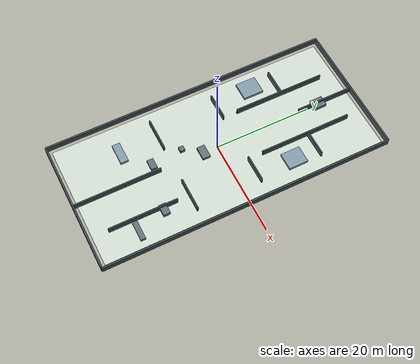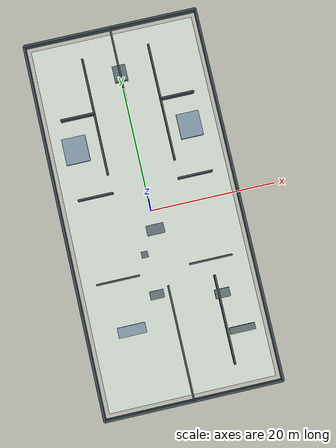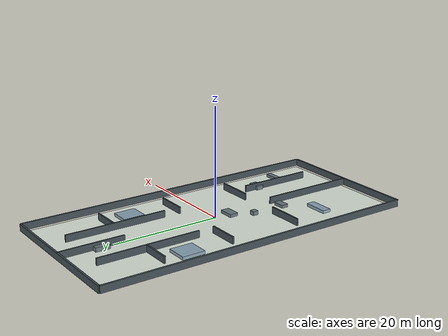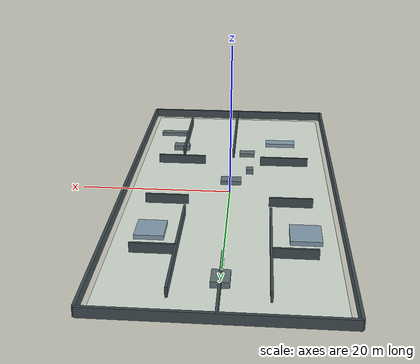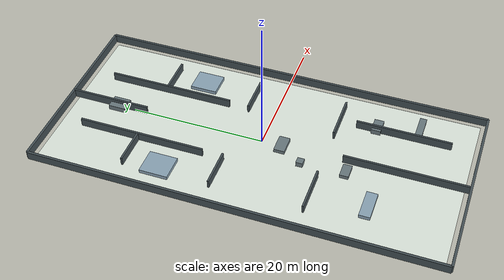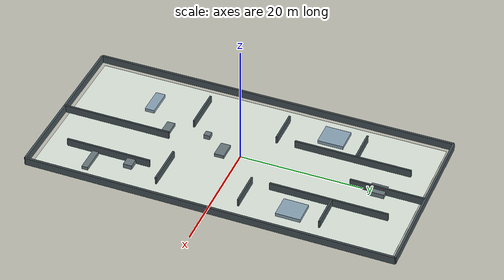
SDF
<?xml version="1.0" ?>
<sdf version="1.6">
  <world name="duplex_family">
    <gravity>0 0 -9.8</gravity>
    <scene>
      <ambient>0.65 0.65 0.65 1</ambient>
      <background>0.78 0.84 0.88 1</background>
    </scene>
    <include>
      <uri>model://sun</uri>
    </include>
    <model name="duplex_family_floor">
      <static>true</static>
      <pose>0.000 0.000 -0.025 0 0 0</pose>
      <link name="floor_link">
        <collision name="floor_collision">
          <geometry>
            <box><size>26.400 58.400 0.050</size></box>
          </geometry>
        </collision>
        <visual name="floor_visual">
          <geometry>
            <box><size>26.400 58.400 0.050</size></box>
          </geometry>
          <material><ambient>0.88 0.92 0.88 1</ambient><diffuse>0.88 0.92 0.88 1</diffuse></material>
        </visual>
      </link>
    </model>
    <model name="outer_north">
      <static>true</static>
      <pose>0.000 30.000 0.625 0 0 0</pose>
      <link name="outer_north_link">
        <collision name="outer_north_collision">
          <geometry>
            <box><size>28.000 0.350 1.250</size></box>
          </geometry>
        </collision>
        <visual name="outer_north_visual">
          <geometry>
            <box><size>28.000 0.350 1.250</size></box>
          </geometry>
          <material><ambient>0.27 0.32 0.34 1</ambient><diffuse>0.27 0.32 0.34 1</diffuse></material>
        </visual>
      </link>
    </model>
    <model name="outer_south">
      <static>true</static>
      <pose>0.000 -30.000 0.625 0 0 0</pose>
      <link name="outer_south_link">
        <collision name="outer_south_collision">
          <geometry>
            <box><size>28.000 0.350 1.250</size></box>
          </geometry>
        </collision>
        <visual name="outer_south_visual">
          <geometry>
            <box><size>28.000 0.350 1.250</size></box>
          </geometry>
          <material><ambient>0.27 0.32 0.34 1</ambient><diffuse>0.27 0.32 0.34 1</diffuse></material>
        </visual>
      </link>
    </model>
    <model name="outer_west">
      <static>true</static>
      <pose>-14.000 0.000 0.625 0 0 0</pose>
      <link name="outer_west_link">
        <collision name="outer_west_collision">
          <geometry>
            <box><size>0.350 60.000 1.250</size></box>
          </geometry>
        </collision>
        <visual name="outer_west_visual">
          <geometry>
            <box><size>0.350 60.000 1.250</size></box>
          </geometry>
          <material><ambient>0.27 0.32 0.34 1</ambient><diffuse>0.27 0.32 0.34 1</diffuse></material>
        </visual>
      </link>
    </model>
    <model name="outer_east">
      <static>true</static>
      <pose>14.000 0.000 0.625 0 0 0</pose>
      <link name="outer_east_link">
        <collision name="outer_east_collision">
          <geometry>
            <box><size>0.350 60.000 1.250</size></box>
          </geometry>
        </collision>
        <visual name="outer_east_visual">
          <geometry>
            <box><size>0.350 60.000 1.250</size></box>
          </geometry>
          <material><ambient>0.27 0.32 0.34 1</ambient><diffuse>0.27 0.32 0.34 1</diffuse></material>
        </visual>
      </link>
    </model>
    <model name="home_public_private_wall_w">
      <static>true</static>
      <pose>-8.000 4.000 0.625 0 0 0</pose>
      <link name="home_public_private_wall_w_link">
        <collision name="home_public_private_wall_w_collision">
          <geometry>
            <box><size>5.600 0.280 1.250</size></box>
          </geometry>
        </collision>
        <visual name="home_public_private_wall_w_visual">
          <geometry>
            <box><size>5.600 0.280 1.250</size></box>
          </geometry>
          <material><ambient>0.27 0.32 0.34 1</ambient><diffuse>0.27 0.32 0.34 1</diffuse></material>
        </visual>
      </link>
    </model>
    <model name="home_public_private_wall_e">
      <static>true</static>
      <pose>8.000 4.000 0.625 0 0 0</pose>
      <link name="home_public_private_wall_e_link">
        <collision name="home_public_private_wall_e_collision">
          <geometry>
            <box><size>5.600 0.280 1.250</size></box>
          </geometry>
        </collision>
        <visual name="home_public_private_wall_e_visual">
          <geometry>
            <box><size>5.600 0.280 1.250</size></box>
          </geometry>
          <material><ambient>0.27 0.32 0.34 1</ambient><diffuse>0.27 0.32 0.34 1</diffuse></material>
        </visual>
      </link>
    </model>
    <model name="home_left_private_wall">
      <static>true</static>
      <pose>-5.400 16.500 0.625 0 0 0</pose>
      <link name="home_left_private_wall_link">
        <collision name="home_left_private_wall_collision">
          <geometry>
            <box><size>0.280 19.000 1.250</size></box>
          </geometry>
        </collision>
        <visual name="home_left_private_wall_visual">
          <geometry>
            <box><size>0.280 19.000 1.250</size></box>
          </geometry>
          <material><ambient>0.27 0.32 0.34 1</ambient><diffuse>0.27 0.32 0.34 1</diffuse></material>
        </visual>
      </link>
    </model>
    <model name="home_right_private_wall">
      <static>true</static>
      <pose>5.400 16.500 0.625 0 0 0</pose>
      <link name="home_right_private_wall_link">
        <collision name="home_right_private_wall_collision">
          <geometry>
            <box><size>0.280 19.000 1.250</size></box>
          </geometry>
        </collision>
        <visual name="home_right_private_wall_visual">
          <geometry>
            <box><size>0.280 19.000 1.250</size></box>
          </geometry>
          <material><ambient>0.27 0.32 0.34 1</ambient><diffuse>0.27 0.32 0.34 1</diffuse></material>
        </visual>
      </link>
    </model>
    <model name="home_kitchen_side_wall">
      <static>true</static>
      <pose>7.400 -19.000 0.625 0 0 0</pose>
      <link name="home_kitchen_side_wall_link">
        <collision name="home_kitchen_side_wall_collision">
          <geometry>
            <box><size>0.280 14.000 1.250</size></box>
          </geometry>
        </collision>
        <visual name="home_kitchen_side_wall_visual">
          <geometry>
            <box><size>0.280 14.000 1.250</size></box>
          </geometry>
          <material><ambient>0.27 0.32 0.34 1</ambient><diffuse>0.27 0.32 0.34 1</diffuse></material>
        </visual>
      </link>
    </model>
    <model name="home_kitchen_dining_wall_w">
      <static>true</static>
      <pose>-7.400 -9.500 0.625 0 0 0</pose>
      <link name="home_kitchen_dining_wall_w_link">
        <collision name="home_kitchen_dining_wall_w_collision">
          <geometry>
            <box><size>6.800 0.280 1.250</size></box>
          </geometry>
        </collision>
        <visual name="home_kitchen_dining_wall_w_visual">
          <geometry>
            <box><size>6.800 0.280 1.250</size></box>
          </geometry>
          <material><ambient>0.27 0.32 0.34 1</ambient><diffuse>0.27 0.32 0.34 1</diffuse></material>
        </visual>
      </link>
    </model>
    <model name="home_kitchen_dining_wall_e">
      <static>true</static>
      <pose>7.400 -9.500 0.625 0 0 0</pose>
      <link name="home_kitchen_dining_wall_e_link">
        <collision name="home_kitchen_dining_wall_e_collision">
          <geometry>
            <box><size>6.800 0.280 1.250</size></box>
          </geometry>
        </collision>
        <visual name="home_kitchen_dining_wall_e_visual">
          <geometry>
            <box><size>6.800 0.280 1.250</size></box>
          </geometry>
          <material><ambient>0.27 0.32 0.34 1</ambient><diffuse>0.27 0.32 0.34 1</diffuse></material>
        </visual>
      </link>
    </model>
    <model name="home_bath_wall_w">
      <static>true</static>
      <pose>-8.100 17.000 0.625 0 0 0</pose>
      <link name="home_bath_wall_w_link">
        <collision name="home_bath_wall_w_collision">
          <geometry>
            <box><size>5.400 0.280 1.250</size></box>
          </geometry>
        </collision>
        <visual name="home_bath_wall_w_visual">
          <geometry>
            <box><size>5.400 0.280 1.250</size></box>
          </geometry>
          <material><ambient>0.27 0.32 0.34 1</ambient><diffuse>0.27 0.32 0.34 1</diffuse></material>
        </visual>
      </link>
    </model>
    <model name="home_bath_wall_e">
      <static>true</static>
      <pose>8.100 17.000 0.625 0 0 0</pose>
      <link name="home_bath_wall_e_link">
        <collision name="home_bath_wall_e_collision">
          <geometry>
            <box><size>5.400 0.280 1.250</size></box>
          </geometry>
        </collision>
        <visual name="home_bath_wall_e_visual">
          <geometry>
            <box><size>5.400 0.280 1.250</size></box>
          </geometry>
          <material><ambient>0.27 0.32 0.34 1</ambient><diffuse>0.27 0.32 0.34 1</diffuse></material>
        </visual>
      </link>
    </model>
    <model name="duplex_sofa">
      <static>true</static>
      <pose>-7.000 -17.500 0.275 0 0 0</pose>
      <link name="duplex_sofa_link">
        <collision name="duplex_sofa_collision">
          <geometry>
            <box><size>4.400 1.600 0.550</size></box>
          </geometry>
        </collision>
        <visual name="duplex_sofa_visual">
          <geometry>
            <box><size>4.400 1.600 0.550</size></box>
          </geometry>
          <material><ambient>0.55 0.65 0.72 1</ambient><diffuse>0.55 0.65 0.72 1</diffuse></material>
        </visual>
      </link>
    </model>
    <model name="duplex_coffee_table">
      <static>true</static>
      <pose>-2.000 -13.000 0.275 0 0 0</pose>
      <link name="duplex_coffee_table_link">
        <collision name="duplex_coffee_table_collision">
          <geometry>
            <box><size>2.200 1.300 0.550</size></box>
          </geometry>
        </collision>
        <visual name="duplex_coffee_table_visual">
          <geometry>
            <box><size>2.200 1.300 0.550</size></box>
          </geometry>
          <material><ambient>0.42 0.48 0.50 1</ambient><diffuse>0.42 0.48 0.50 1</diffuse></material>
        </visual>
      </link>
    </model>
    <model name="duplex_dining_table">
      <static>true</static>
      <pose>0.000 -3.000 0.275 0 0 0</pose>
      <link name="duplex_dining_table_link">
        <collision name="duplex_dining_table_collision">
          <geometry>
            <box><size>2.800 1.600 0.550</size></box>
          </geometry>
        </collision>
        <visual name="duplex_dining_table_visual">
          <geometry>
            <box><size>2.800 1.600 0.550</size></box>
          </geometry>
          <material><ambient>0.42 0.48 0.50 1</ambient><diffuse>0.42 0.48 0.50 1</diffuse></material>
        </visual>
      </link>
    </model>
    <model name="duplex_kitchen_counter">
      <static>true</static>
      <pose>9.800 -21.000 0.275 0 0 0</pose>
      <link name="duplex_kitchen_counter_link">
        <collision name="duplex_kitchen_counter_collision">
          <geometry>
            <box><size>4.000 1.000 0.550</size></box>
          </geometry>
        </collision>
        <visual name="duplex_kitchen_counter_visual">
          <geometry>
            <box><size>4.000 1.000 0.550</size></box>
          </geometry>
          <material><ambient>0.42 0.48 0.50 1</ambient><diffuse>0.42 0.48 0.50 1</diffuse></material>
        </visual>
      </link>
    </model>
    <model name="duplex_kitchen_island">
      <static>true</static>
      <pose>8.000 -15.000 0.375 0 0 0</pose>
      <link name="duplex_kitchen_island_link">
        <collision name="duplex_kitchen_island_collision">
          <geometry>
            <box><size>2.300 1.400 0.750</size></box>
          </geometry>
        </collision>
        <visual name="duplex_kitchen_island_visual">
          <geometry>
            <box><size>2.300 1.400 0.750</size></box>
          </geometry>
          <material><ambient>0.42 0.48 0.50 1</ambient><diffuse>0.42 0.48 0.50 1</diffuse></material>
        </visual>
      </link>
    </model>
    <model name="duplex_bed_left">
      <static>true</static>
      <pose>-9.500 12.000 0.275 0 0 0</pose>
      <link name="duplex_bed_left_link">
        <collision name="duplex_bed_left_collision">
          <geometry>
            <box><size>3.800 4.200 0.550</size></box>
          </geometry>
        </collision>
        <visual name="duplex_bed_left_visual">
          <geometry>
            <box><size>3.800 4.200 0.550</size></box>
          </geometry>
          <material><ambient>0.55 0.65 0.72 1</ambient><diffuse>0.55 0.65 0.72 1</diffuse></material>
        </visual>
      </link>
    </model>
    <model name="duplex_bed_right">
      <static>true</static>
      <pose>9.000 12.000 0.275 0 0 0</pose>
      <link name="duplex_bed_right_link">
        <collision name="duplex_bed_right_collision">
          <geometry>
            <box><size>3.600 4.000 0.550</size></box>
          </geometry>
        </collision>
        <visual name="duplex_bed_right_visual">
          <geometry>
            <box><size>3.600 4.000 0.550</size></box>
          </geometry>
          <material><ambient>0.55 0.65 0.72 1</ambient><diffuse>0.55 0.65 0.72 1</diffuse></material>
        </visual>
      </link>
    </model>
    <model name="duplex_bath_fixture">
      <static>true</static>
      <pose>0.000 22.500 0.375 0 0 0</pose>
      <link name="duplex_bath_fixture_link">
        <collision name="duplex_bath_fixture_collision">
          <geometry>
            <box><size>2.100 2.600 0.750</size></box>
          </geometry>
        </collision>
        <visual name="duplex_bath_fixture_visual">
          <geometry>
            <box><size>2.100 2.600 0.750</size></box>
          </geometry>
          <material><ambient>0.42 0.48 0.50 1</ambient><diffuse>0.42 0.48 0.50 1</diffuse></material>
        </visual>
      </link>
    </model>
    <model name="duplex_fragile_object">
      <static>true</static>
      <pose>-2.500 -6.500 0.375 0 0 0</pose>
      <link name="duplex_fragile_object_link">
        <collision name="duplex_fragile_object_collision">
          <geometry>
            <box><size>1.000 1.000 0.750</size></box>
          </geometry>
        </collision>
        <visual name="duplex_fragile_object_visual">
          <geometry>
            <box><size>1.000 1.000 0.750</size></box>
          </geometry>
          <material><ambient>0.42 0.48 0.50 1</ambient><diffuse>0.42 0.48 0.50 1</diffuse></material>
        </visual>
      </link>
    </model>
    <model name="duplex_half_height_spine_s">
      <static>true</static>
      <pose>0.000 -21.000 0.625 0 0 0</pose>
      <link name="duplex_half_height_spine_s_link">
        <collision name="duplex_half_height_spine_s_collision">
          <geometry>
            <box><size>0.280 18.000 1.250</size></box>
          </geometry>
        </collision>
        <visual name="duplex_half_height_spine_s_visual">
          <geometry>
            <box><size>0.280 18.000 1.250</size></box>
          </geometry>
          <material><ambient>0.27 0.32 0.34 1</ambient><diffuse>0.27 0.32 0.34 1</diffuse></material>
        </visual>
      </link>
    </model>
    <model name="duplex_half_height_spine_n">
      <static>true</static>
      <pose>0.000 24.000 0.625 0 0 0</pose>
      <link name="duplex_half_height_spine_n_link">
        <collision name="duplex_half_height_spine_n_collision">
          <geometry>
            <box><size>0.280 12.000 1.250</size></box>
          </geometry>
        </collision>
        <visual name="duplex_half_height_spine_n_visual">
          <geometry>
            <box><size>0.280 12.000 1.250</size></box>
          </geometry>
          <material><ambient>0.27 0.32 0.34 1</ambient><diffuse>0.27 0.32 0.34 1</diffuse></material>
        </visual>
      </link>
    </model>
  </world>
</sdf>
